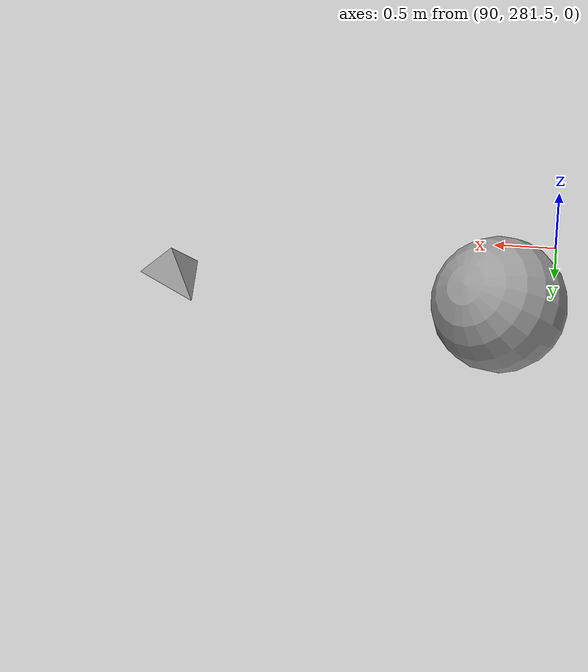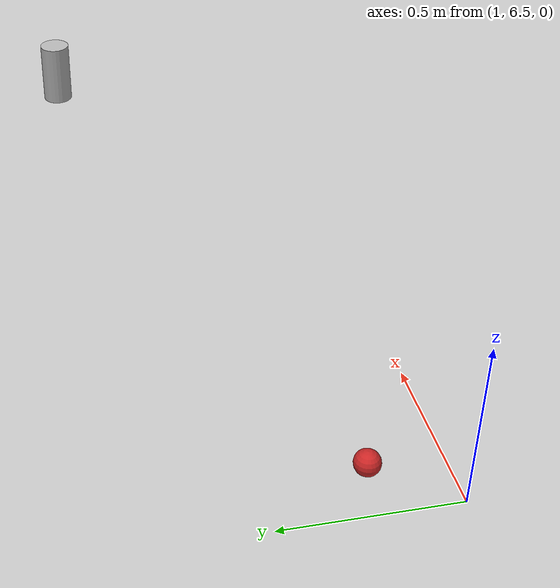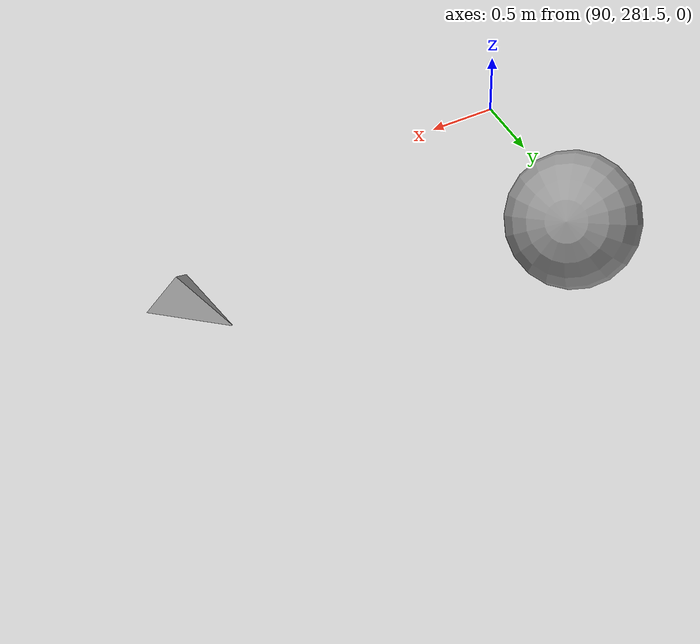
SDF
<sdf version="1.7">
 <world name="default">
  <light name="sun" type="directional">
   <pose>0 0 10 0 -0 0</pose>
   <diffuse>0.8 0.8 0.8 1</diffuse>
   <specular>0.2 0.2 0.2 1</specular>
   <attenuation>
    <range>1000</range>
    <constant>0.9</constant>
    <linear>0.01</linear>
    <quadratic>0.001</quadratic>
   </attenuation>
   <direction>-0.5 0.1 -0.9</direction>
   <spot><inner_angle>0</inner_angle><outer_angle>0</outer_angle><falloff>0</falloff></spot>
  </light>
  <model name="ground_plane">
   <static>1</static>
   <link name="link">
    <collision name="collision">
     <geometry><plane><normal>0 0 1</normal><size>100 100</size></plane></geometry>
     <surface>
      <contact><collide_bitmask>65535</collide_bitmask></contact>
      <friction><ode><mu>100</mu><mu2>50</mu2></ode></friction>
     </surface>
    </collision>
    <visual name="visual">
     <cast_shadows>0</cast_shadows>
     <geometry><plane><normal>0 0 1</normal><size>100 100</size></plane></geometry>
     <material>
      <script><uri>file://media/materials/scripts/gazebo.material</uri><name>Gazebo/Grey</name></script>
     </material>
    </visual>
   </link>
  </model>
  <gravity>0 0 -9.8</gravity>
  <magnetic_field>6e-06 2.3e-05 -4.2e-05</magnetic_field>
  <atmosphere type="adiabatic"/>
  <physics type="ode">
   <max_step_size>0.001</max_step_size>
   <real_time_factor>1</real_time_factor>
   <real_time_update_rate>1000</real_time_update_rate>
  </physics>
  <scene><ambient>0.4 0.4 0.4 1</ambient><background>0.7 0.7 0.7 1</background><shadows>1</shadows></scene>
  <spherical_coordinates>
   <surface_model>EARTH_WGS84</surface_model>
   <latitude_deg>0</latitude_deg>
   <longitude_deg>0</longitude_deg>
   <elevation>0</elevation>
   <heading_deg>0</heading_deg>
  </spherical_coordinates>
  <model name="worls2">
   <link name="link_0">
    <inertial>
     <mass>1</mass>
     <inertia><ixx>0.1</ixx><ixy>0</ixy><ixz>0</ixz><iyy>0.1</iyy><iyz>0</iyz><izz>0.1</izz></inertia>
    </inertial>
    <pose>-0.690139 -1.29605 0 0 -0 0</pose>
    <visual name="visual">
     <geometry><sphere><radius>0.5</radius></sphere></geometry>
     <material>
      <lighting>1</lighting>
      <script><uri>file://media/materials/scripts/gazebo.material</uri><name>Gazebo/Grey</name></script>
      <shader type="pixel"/>
     </material>
    </visual>
    <collision name="collision">
     <geometry><sphere><radius>0.5</radius></sphere></geometry>
     <surface>
      <friction>
       <ode><mu>1</mu><mu2>1</mu2><fdir1>0 0 0</fdir1><slip1>0</slip1><slip2>0</slip2></ode>
       <torsional>
        <coefficient>1</coefficient>
        <patch_radius>0</patch_radius>
        <surface_radius>0</surface_radius>
        <use_patch_radius>1</use_patch_radius>
        <ode><slip>0</slip></ode>
       </torsional>
      </friction>
      <bounce><restitution_coefficient>0</restitution_coefficient><threshold>1e+06</threshold></bounce>
      <contact>
       <collide_without_contact>0</collide_without_contact>
       <collide_without_contact_bitmask>1</collide_without_contact_bitmask>
       <collide_bitmask>1</collide_bitmask>
       <ode>
        <soft_cfm>0</soft_cfm>
        <soft_erp>0.2</soft_erp>
        <kp>1e+13</kp>
        <kd>1</kd>
        <max_vel>0.01</max_vel>
        <min_depth>0</min_depth>
       </ode>
       <bullet>
        <split_impulse>1</split_impulse>
        <split_impulse_penetration_threshold>-0.01</split_impulse_penetration_threshold>
        <soft_cfm>0</soft_cfm>
        <soft_erp>0.2</soft_erp>
        <kp>1e+13</kp>
        <kd>1</kd>
       </bullet>
      </contact>
     </surface>
    </collision>
   </link>
   <link name="link_1">
    <inertial>
     <mass>1</mass>
     <inertia>
      <ixx>0.166667</ixx>
      <ixy>0</ixy>
      <ixz>0</ixz>
      <iyy>0.166667</iyy>
      <iyz>0</iyz>
      <izz>0.166667</izz>
     </inertia>
    </inertial>
    <pose>0.690138 1.29605 0 0 -0 0</pose>
    <visual name="visual">
     <geometry><box><size>1 1 1</size></box></geometry>
     <material>
      <lighting>1</lighting>
      <script><uri>file://media/materials/scripts/gazebo.material</uri><name>Gazebo/Grey</name></script>
      <shader type="pixel"/>
     </material>
    </visual>
    <collision name="collision">
     <geometry><box><size>1 1 1</size></box></geometry>
     <surface>
      <friction>
       <ode><mu>1</mu><mu2>1</mu2><fdir1>0 0 0</fdir1><slip1>0</slip1><slip2>0</slip2></ode>
       <torsional>
        <coefficient>1</coefficient>
        <patch_radius>0</patch_radius>
        <surface_radius>0</surface_radius>
        <use_patch_radius>1</use_patch_radius>
        <ode><slip>0</slip></ode>
       </torsional>
      </friction>
      <bounce><restitution_coefficient>0</restitution_coefficient><threshold>1e+06</threshold></bounce>
      <contact>
       <collide_without_contact>0</collide_without_contact>
       <collide_without_contact_bitmask>1</collide_without_contact_bitmask>
       <collide_bitmask>1</collide_bitmask>
       <ode>
        <soft_cfm>0</soft_cfm>
        <soft_erp>0.2</soft_erp>
        <kp>1e+13</kp>
        <kd>1</kd>
        <max_vel>0.01</max_vel>
        <min_depth>0</min_depth>
       </ode>
       <bullet>
        <split_impulse>1</split_impulse>
        <split_impulse_penetration_threshold>-0.01</split_impulse_penetration_threshold>
        <soft_cfm>0</soft_cfm>
        <soft_erp>0.2</soft_erp>
        <kp>1e+13</kp>
        <kd>1</kd>
       </bullet>
      </contact>
     </surface>
    </collision>
   </link>
   <static>0</static>
   <pose>91.6617 282.87 -0.067473 -0.798005 -0.418408 -1.08243</pose>
  </model>
  <light name="user_point_light_0" type="point">
   <pose>0.721117 0.317934 1 0 -0 0</pose>
   <diffuse>0.5 0.5 0.5 1</diffuse>
   <specular>0.1 0.1 0.1 1</specular>
   <attenuation>
    <range>20</range>
    <constant>0.5</constant>
    <linear>0.01</linear>
    <quadratic>0.001</quadratic>
   </attenuation>
   <cast_shadows>0</cast_shadows>
   <direction>0 0 -1</direction>
  </light>
  <model name="cricket_ball">
   <link name="link">
    <pose>0 0 0.0375 0 -0 0</pose>
    <inertial>
     <mass>0.1467</mass>
     <inertia>
      <ixx>8.25187e-05</ixx>
      <ixy>0</ixy>
      <ixz>0</ixz>
      <iyy>8.25187e-05</iyy>
      <iyz>0</iyz>
      <izz>8.25187e-05</izz>
     </inertia>
    </inertial>
    <collision name="collision">
     <geometry><sphere><radius>0.0375</radius></sphere></geometry>
     <surface>
      <contact>
       <poissons_ratio>0.347</poissons_ratio>
       <elastic_modulus>8.8e+09</elastic_modulus>
       <ode><kp>100000</kp><kd>100</kd><max_vel>100</max_vel><min_depth>0.001</min_depth></ode>
      </contact>
      <friction>
       <torsional>
        <coefficient>1</coefficient>
        <use_patch_radius>0</use_patch_radius>
        <surface_radius>0.01</surface_radius>
       </torsional>
      </friction>
     </surface>
    </collision>
    <visual name="visual">
     <geometry><sphere><radius>0.0375</radius></sphere></geometry>
     <material>
      <script><uri>file://media/materials/scripts/gazebo.material</uri><name>Gazebo/Red</name></script>
     </material>
    </visual>
    <velocity_decay><linear>0</linear><angular>0.005</angular></velocity_decay>
   </link>
   <pose>1.14617 6.71835 -0.001014 0 -0 0</pose>
  </model>
  <model name="beer">
   <link name="link">
    <pose>0 0 0.115 0 -0 0</pose>
    <inertial>
     <mass>0.39</mass>
     <inertia><ixx>0.00058</ixx><ixy>0</ixy><ixz>0</ixz><iyy>0.00058</iyy><iyz>0</iyz><izz>0.00019</izz></inertia>
    </inertial>
    <collision name="collision">
     <geometry><cylinder><radius>0.055</radius><length>0.23</length></cylinder></geometry>
    </collision>
    <visual name="visual">
     <geometry><cylinder><radius>0.055</radius><length>0.23</length></cylinder></geometry>
     <material>
      <script>
       <uri>model://beer/materials/scripts</uri>
       <uri>model://beer/materials/textures</uri>
       <name>Beer/Diffuse</name>
      </script>
     </material>
    </visual>
   </link>
   <pose>3.40206 7.31292 -2e-06 1e-06 -0 -4e-06</pose>
  </model>
 </world>
</sdf>
